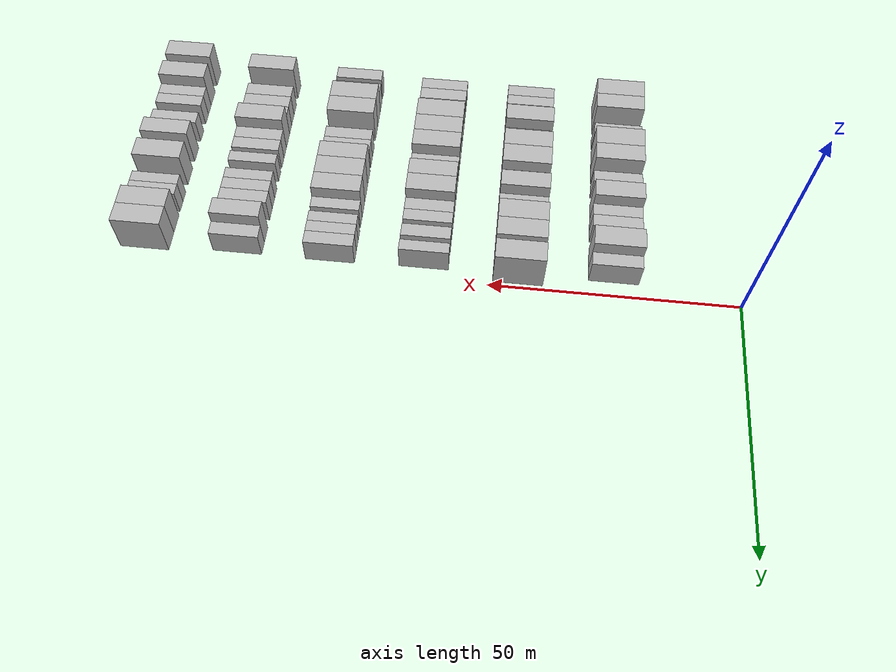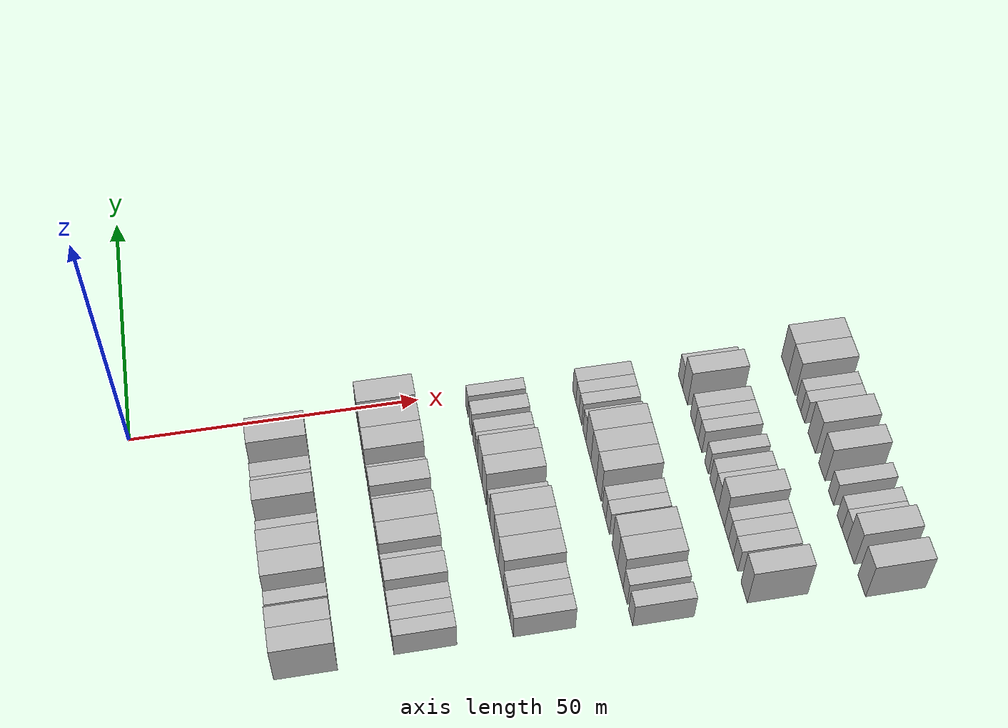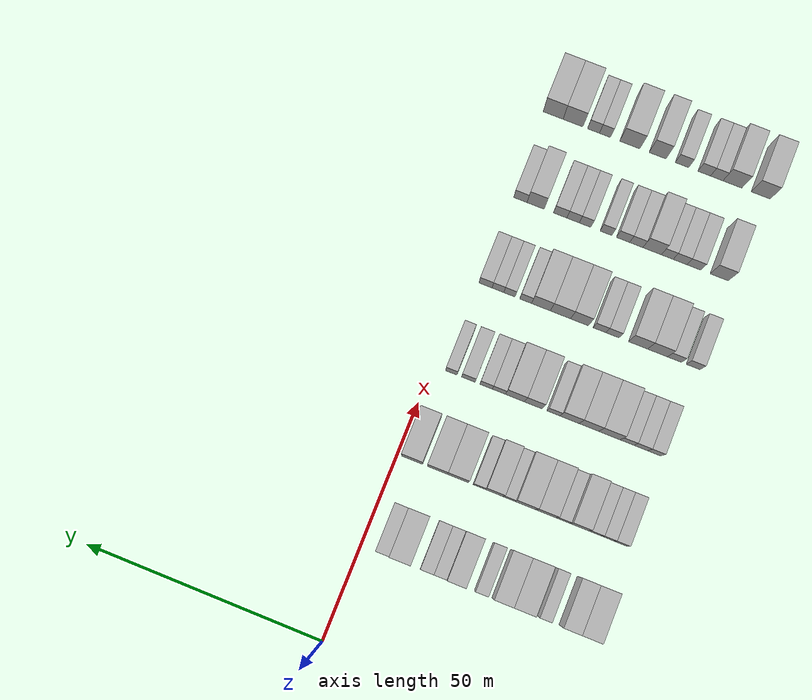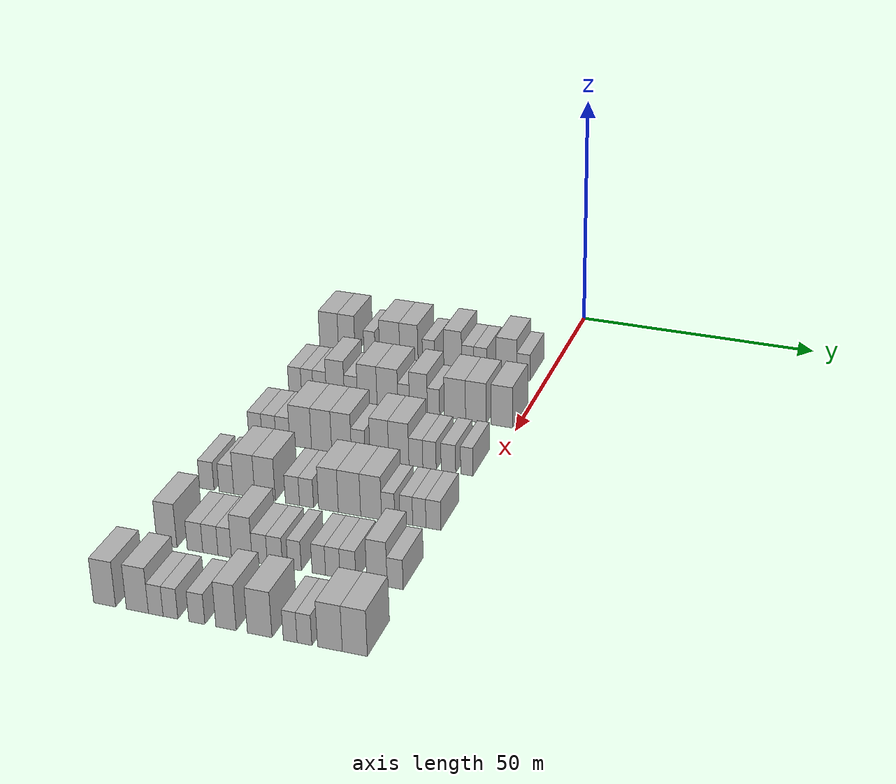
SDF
<sdf version="1.6">
 <world name="default">
  <model name="building_81">
   <static>1</static>
   <pose>25.0000 -47.2864 0 0.000000 0.000000 0.000000</pose>
   <link name="link">
    <pose>0 0 4.50 0 0 0</pose>
    <collision name="collision"><geometry><box><size>10.0000 4.2338 9.0000</size></box></geometry></collision>
    <visual name="visual">
     <cast_shadows>0</cast_shadows>
     <geometry><box><size>10.0000 4.2338 9.0000</size></box></geometry>
     <material>
      <script>
       <uri>model://HANNAS_wall/materials/scripts</uri>
       <uri>model://HANNAS_wall/materials/textures</uri>
       <name>vrc/HANNAS_wall</name>
      </script>
     </material>
    </visual>
   </link>
  </model>
  <model name="building_82">
   <static>1</static>
   <pose>25.0000 -43.3080 0 0.000000 0.000000 0.000000</pose>
   <link name="link">
    <pose>0 0 4.50 0 0 0</pose>
    <collision name="collision"><geometry><box><size>10.0000 3.7230 9.0000</size></box></geometry></collision>
    <visual name="visual">
     <cast_shadows>0</cast_shadows>
     <geometry><box><size>10.0000 3.7230 9.0000</size></box></geometry>
     <material>
      <script>
       <uri>model://HANNAS_wall/materials/scripts</uri>
       <uri>model://HANNAS_wall/materials/textures</uri>
       <name>vrc/HANNAS_wall</name>
      </script>
     </material>
    </visual>
   </link>
  </model>
  <model name="building_83">
   <static>1</static>
   <pose>25.0000 -38.1948 0 0.000000 0.000000 0.000000</pose>
   <link name="link">
    <pose>0 0 3.00 0 0 0</pose>
    <collision name="collision"><geometry><box><size>10.0000 2.5033 6.0000</size></box></geometry></collision>
    <visual name="visual">
     <cast_shadows>0</cast_shadows>
     <geometry><box><size>10.0000 2.5033 6.0000</size></box></geometry>
     <material>
      <script>
       <uri>model://HANNAS_wall/materials/scripts</uri>
       <uri>model://HANNAS_wall/materials/textures</uri>
       <name>vrc/HANNAS_wall</name>
      </script>
     </material>
    </visual>
   </link>
  </model>
  <model name="building_84">
   <static>1</static>
   <pose>25.0000 -33.7009 0 0.000000 0.000000 0.000000</pose>
   <link name="link">
    <pose>0 0 4.50 0 0 0</pose>
    <collision name="collision"><geometry><box><size>10.0000 4.4846 9.0000</size></box></geometry></collision>
    <visual name="visual">
     <cast_shadows>0</cast_shadows>
     <geometry><box><size>10.0000 4.4846 9.0000</size></box></geometry>
     <material>
      <script>
       <uri>model://HANNAS_wall/materials/scripts</uri>
       <uri>model://HANNAS_wall/materials/textures</uri>
       <name>vrc/HANNAS_wall</name>
      </script>
     </material>
    </visual>
   </link>
  </model>
  <model name="building_85">
   <static>1</static>
   <pose>25.0000 -29.4518 0 0.000000 0.000000 0.000000</pose>
   <link name="link">
    <pose>0 0 4.50 0 0 0</pose>
    <collision name="collision"><geometry><box><size>10.0000 4.0135 9.0000</size></box></geometry></collision>
    <visual name="visual">
     <cast_shadows>0</cast_shadows>
     <geometry><box><size>10.0000 4.0135 9.0000</size></box></geometry>
     <material>
      <script>
       <uri>model://HANNAS_wall/materials/scripts</uri>
       <uri>model://HANNAS_wall/materials/textures</uri>
       <name>vrc/HANNAS_wall</name>
      </script>
     </material>
    </visual>
   </link>
  </model>
  <model name="building_86">
   <static>1</static>
   <pose>25.0000 -25.1107 0 0.000000 0.000000 0.000000</pose>
   <link name="link">
    <pose>0 0 3.00 0 0 0</pose>
    <collision name="collision"><geometry><box><size>10.0000 2.6688 6.0000</size></box></geometry></collision>
    <visual name="visual">
     <cast_shadows>0</cast_shadows>
     <geometry><box><size>10.0000 2.6688 6.0000</size></box></geometry>
     <material>
      <script>
       <uri>model://HANNAS_wall/materials/scripts</uri>
       <uri>model://HANNAS_wall/materials/textures</uri>
       <name>vrc/HANNAS_wall</name>
      </script>
     </material>
    </visual>
   </link>
  </model>
  <model name="building_87">
   <static>1</static>
   <pose>25.0000 -19.8352 0 0.000000 0.000000 0.000000</pose>
   <link name="link">
    <pose>0 0 4.50 0 0 0</pose>
    <collision name="collision"><geometry><box><size>10.0000 3.8820 9.0000</size></box></geometry></collision>
    <visual name="visual">
     <cast_shadows>0</cast_shadows>
     <geometry><box><size>10.0000 3.8820 9.0000</size></box></geometry>
     <material>
      <script>
       <uri>model://HANNAS_wall/materials/scripts</uri>
       <uri>model://HANNAS_wall/materials/textures</uri>
       <name>vrc/HANNAS_wall</name>
      </script>
     </material>
    </visual>
   </link>
  </model>
  <model name="building_88">
   <static>1</static>
   <pose>25.0000 -16.5623 0 0.000000 0.000000 0.000000</pose>
   <link name="link">
    <pose>0 0 3.00 0 0 0</pose>
    <collision name="collision"><geometry><box><size>10.0000 2.6638 6.0000</size></box></geometry></collision>
    <visual name="visual">
     <cast_shadows>0</cast_shadows>
     <geometry><box><size>10.0000 2.6638 6.0000</size></box></geometry>
     <material>
      <script>
       <uri>model://HANNAS_wall/materials/scripts</uri>
       <uri>model://HANNAS_wall/materials/textures</uri>
       <name>vrc/HANNAS_wall</name>
      </script>
     </material>
    </visual>
   </link>
  </model>
  <model name="building_89">
   <static>1</static>
   <pose>25.0000 -13.8330 0 0.000000 0.000000 0.000000</pose>
   <link name="link">
    <pose>0 0 3.00 0 0 0</pose>
    <collision name="collision"><geometry><box><size>10.0000 2.7950 6.0000</size></box></geometry></collision>
    <visual name="visual">
     <cast_shadows>0</cast_shadows>
     <geometry><box><size>10.0000 2.7950 6.0000</size></box></geometry>
     <material>
      <script>
       <uri>model://HANNAS_wall/materials/scripts</uri>
       <uri>model://HANNAS_wall/materials/textures</uri>
       <name>vrc/HANNAS_wall</name>
      </script>
     </material>
    </visual>
   </link>
  </model>
  <model name="building_90">
   <static>1</static>
   <pose>25.0000 -8.2355 0 0.000000 0.000000 0.000000</pose>
   <link name="link">
    <pose>0 0 4.50 0 0 0</pose>
    <collision name="collision"><geometry><box><size>10.0000 4.3999 9.0000</size></box></geometry></collision>
    <visual name="visual">
     <cast_shadows>0</cast_shadows>
     <geometry><box><size>10.0000 4.3999 9.0000</size></box></geometry>
     <material>
      <script>
       <uri>model://HANNAS_wall/materials/scripts</uri>
       <uri>model://HANNAS_wall/materials/textures</uri>
       <name>vrc/HANNAS_wall</name>
      </script>
     </material>
    </visual>
   </link>
  </model>
  <model name="building_91">
   <static>1</static>
   <pose>25.0000 -4.6048 0 0.000000 0.000000 0.000000</pose>
   <link name="link">
    <pose>0 0 3.00 0 0 0</pose>
    <collision name="collision"><geometry><box><size>10.0000 2.8616 6.0000</size></box></geometry></collision>
    <visual name="visual">
     <cast_shadows>0</cast_shadows>
     <geometry><box><size>10.0000 2.8616 6.0000</size></box></geometry>
     <material>
      <script>
       <uri>model://HANNAS_wall/materials/scripts</uri>
       <uri>model://HANNAS_wall/materials/textures</uri>
       <name>vrc/HANNAS_wall</name>
      </script>
     </material>
    </visual>
   </link>
  </model>
  <model name="building_254">
   <static>1</static>
   <pose>44.0000 -46.8607 0 0.000000 0.000000 0.000000</pose>
   <link name="link">
    <pose>0 0 3.00 0 0 0</pose>
    <collision name="collision"><geometry><box><size>10.0000 2.7689 6.0000</size></box></geometry></collision>
    <visual name="visual">
     <cast_shadows>0</cast_shadows>
     <geometry><box><size>10.0000 2.7689 6.0000</size></box></geometry>
     <material>
      <script>
       <uri>model://HANNAS_wall/materials/scripts</uri>
       <uri>model://HANNAS_wall/materials/textures</uri>
       <name>vrc/HANNAS_wall</name>
      </script>
     </material>
    </visual>
   </link>
  </model>
  <model name="building_255">
   <static>1</static>
   <pose>44.0000 -44.2031 0 0.000000 0.000000 0.000000</pose>
   <link name="link">
    <pose>0 0 3.00 0 0 0</pose>
    <collision name="collision"><geometry><box><size>10.0000 2.5463 6.0000</size></box></geometry></collision>
    <visual name="visual">
     <cast_shadows>0</cast_shadows>
     <geometry><box><size>10.0000 2.5463 6.0000</size></box></geometry>
     <material>
      <script>
       <uri>model://HANNAS_wall/materials/scripts</uri>
       <uri>model://HANNAS_wall/materials/textures</uri>
       <name>vrc/HANNAS_wall</name>
      </script>
     </material>
    </visual>
   </link>
  </model>
  <model name="building_256">
   <static>1</static>
   <pose>44.0000 -41.4978 0 0.000000 0.000000 0.000000</pose>
   <link name="link">
    <pose>0 0 3.00 0 0 0</pose>
    <collision name="collision"><geometry><box><size>10.0000 2.8644 6.0000</size></box></geometry></collision>
    <visual name="visual">
     <cast_shadows>0</cast_shadows>
     <geometry><box><size>10.0000 2.8644 6.0000</size></box></geometry>
     <material>
      <script>
       <uri>model://HANNAS_wall/materials/scripts</uri>
       <uri>model://HANNAS_wall/materials/textures</uri>
       <name>vrc/HANNAS_wall</name>
      </script>
     </material>
    </visual>
   </link>
  </model>
  <model name="building_257">
   <static>1</static>
   <pose>44.0000 -38.1155 0 0.000000 0.000000 0.000000</pose>
   <link name="link">
    <pose>0 0 4.50 0 0 0</pose>
    <collision name="collision"><geometry><box><size>10.0000 3.9001 9.0000</size></box></geometry></collision>
    <visual name="visual">
     <cast_shadows>0</cast_shadows>
     <geometry><box><size>10.0000 3.9001 9.0000</size></box></geometry>
     <material>
      <script>
       <uri>model://HANNAS_wall/materials/scripts</uri>
       <uri>model://HANNAS_wall/materials/textures</uri>
       <name>vrc/HANNAS_wall</name>
      </script>
     </material>
    </visual>
   </link>
  </model>
  <model name="building_258">
   <static>1</static>
   <pose>44.0000 -34.7606 0 0.000000 0.000000 0.000000</pose>
   <link name="link">
    <pose>0 0 3.00 0 0 0</pose>
    <collision name="collision"><geometry><box><size>10.0000 2.8097 6.0000</size></box></geometry></collision>
    <visual name="visual">
     <cast_shadows>0</cast_shadows>
     <geometry><box><size>10.0000 2.8097 6.0000</size></box></geometry>
     <material>
      <script>
       <uri>model://HANNAS_wall/materials/scripts</uri>
       <uri>model://HANNAS_wall/materials/textures</uri>
       <name>vrc/HANNAS_wall</name>
      </script>
     </material>
    </visual>
   </link>
  </model>
  <model name="building_259">
   <static>1</static>
   <pose>44.0000 -31.2723 0 0.000000 0.000000 0.000000</pose>
   <link name="link">
    <pose>0 0 4.50 0 0 0</pose>
    <collision name="collision"><geometry><box><size>10.0000 4.1668 9.0000</size></box></geometry></collision>
    <visual name="visual">
     <cast_shadows>0</cast_shadows>
     <geometry><box><size>10.0000 4.1668 9.0000</size></box></geometry>
     <material>
      <script>
       <uri>model://HANNAS_wall/materials/scripts</uri>
       <uri>model://HANNAS_wall/materials/textures</uri>
       <name>vrc/HANNAS_wall</name>
      </script>
     </material>
    </visual>
   </link>
  </model>
  <model name="building_260">
   <static>1</static>
   <pose>44.0000 -26.9657 0 0.000000 0.000000 0.000000</pose>
   <link name="link">
    <pose>0 0 4.50 0 0 0</pose>
    <collision name="collision"><geometry><box><size>10.0000 4.4465 9.0000</size></box></geometry></collision>
    <visual name="visual">
     <cast_shadows>0</cast_shadows>
     <geometry><box><size>10.0000 4.4465 9.0000</size></box></geometry>
     <material>
      <script>
       <uri>model://HANNAS_wall/materials/scripts</uri>
       <uri>model://HANNAS_wall/materials/textures</uri>
       <name>vrc/HANNAS_wall</name>
      </script>
     </material>
    </visual>
   </link>
  </model>
  <model name="building_261">
   <static>1</static>
   <pose>44.0000 -23.5285 0 0.000000 0.000000 0.000000</pose>
   <link name="link">
    <pose>0 0 3.00 0 0 0</pose>
    <collision name="collision"><geometry><box><size>10.0000 2.4279 6.0000</size></box></geometry></collision>
    <visual name="visual">
     <cast_shadows>0</cast_shadows>
     <geometry><box><size>10.0000 2.4279 6.0000</size></box></geometry>
     <material>
      <script>
       <uri>model://HANNAS_wall/materials/scripts</uri>
       <uri>model://HANNAS_wall/materials/textures</uri>
       <name>vrc/HANNAS_wall</name>
      </script>
     </material>
    </visual>
   </link>
  </model>
  <model name="building_262">
   <static>1</static>
   <pose>44.0000 -20.4294 0 0.000000 0.000000 0.000000</pose>
   <link name="link">
    <pose>0 0 4.50 0 0 0</pose>
    <collision name="collision"><geometry><box><size>10.0000 3.7702 9.0000</size></box></geometry></collision>
    <visual name="visual">
     <cast_shadows>0</cast_shadows>
     <geometry><box><size>10.0000 3.7702 9.0000</size></box></geometry>
     <material>
      <script>
       <uri>model://HANNAS_wall/materials/scripts</uri>
       <uri>model://HANNAS_wall/materials/textures</uri>
       <name>vrc/HANNAS_wall</name>
      </script>
     </material>
    </visual>
   </link>
  </model>
  <model name="building_263">
   <static>1</static>
   <pose>44.0000 -17.2738 0 0.000000 0.000000 0.000000</pose>
   <link name="link">
    <pose>0 0 3.00 0 0 0</pose>
    <collision name="collision"><geometry><box><size>10.0000 2.5410 6.0000</size></box></geometry></collision>
    <visual name="visual">
     <cast_shadows>0</cast_shadows>
     <geometry><box><size>10.0000 2.5410 6.0000</size></box></geometry>
     <material>
      <script>
       <uri>model://HANNAS_wall/materials/scripts</uri>
       <uri>model://HANNAS_wall/materials/textures</uri>
       <name>vrc/HANNAS_wall</name>
      </script>
     </material>
    </visual>
   </link>
  </model>
  <model name="building_264">
   <static>1</static>
   <pose>44.0000 -12.8009 0 0.000000 0.000000 0.000000</pose>
   <link name="link">
    <pose>0 0 4.50 0 0 0</pose>
    <collision name="collision"><geometry><box><size>10.0000 4.4047 9.0000</size></box></geometry></collision>
    <visual name="visual">
     <cast_shadows>0</cast_shadows>
     <geometry><box><size>10.0000 4.4047 9.0000</size></box></geometry>
     <material>
      <script>
       <uri>model://HANNAS_wall/materials/scripts</uri>
       <uri>model://HANNAS_wall/materials/textures</uri>
       <name>vrc/HANNAS_wall</name>
      </script>
     </material>
    </visual>
   </link>
  </model>
  <model name="building_265">
   <static>1</static>
   <pose>44.0000 -8.4700 0 0.000000 0.000000 0.000000</pose>
   <link name="link">
    <pose>0 0 4.50 0 0 0</pose>
    <collision name="collision"><geometry><box><size>10.0000 4.2570 9.0000</size></box></geometry></collision>
    <visual name="visual">
     <cast_shadows>0</cast_shadows>
     <geometry><box><size>10.0000 4.2570 9.0000</size></box></geometry>
     <material>
      <script>
       <uri>model://HANNAS_wall/materials/scripts</uri>
       <uri>model://HANNAS_wall/materials/textures</uri>
       <name>vrc/HANNAS_wall</name>
      </script>
     </material>
    </visual>
   </link>
  </model>
  <model name="building_266">
   <static>1</static>
   <pose>44.0000 -3.1269 0 0.000000 0.000000 0.000000</pose>
   <link name="link">
    <pose>0 0 4.50 0 0 0</pose>
    <collision name="collision"><geometry><box><size>10.0000 4.4292 9.0000</size></box></geometry></collision>
    <visual name="visual">
     <cast_shadows>0</cast_shadows>
     <geometry><box><size>10.0000 4.4292 9.0000</size></box></geometry>
     <material>
      <script>
       <uri>model://HANNAS_wall/materials/scripts</uri>
       <uri>model://HANNAS_wall/materials/textures</uri>
       <name>vrc/HANNAS_wall</name>
      </script>
     </material>
    </visual>
   </link>
  </model>
  <model name="building_426">
   <static>1</static>
   <pose>63.0000 -46.9938 0 0.000000 0.000000 0.000000</pose>
   <link name="link">
    <pose>0 0 3.00 0 0 0</pose>
    <collision name="collision"><geometry><box><size>10.0000 2.7776 6.0000</size></box></geometry></collision>
    <visual name="visual">
     <cast_shadows>0</cast_shadows>
     <geometry><box><size>10.0000 2.7776 6.0000</size></box></geometry>
     <material>
      <script>
       <uri>model://HANNAS_wall/materials/scripts</uri>
       <uri>model://HANNAS_wall/materials/textures</uri>
       <name>vrc/HANNAS_wall</name>
      </script>
     </material>
    </visual>
   </link>
  </model>
  <model name="building_427">
   <static>1</static>
   <pose>63.0000 -44.1446 0 0.000000 0.000000 0.000000</pose>
   <link name="link">
    <pose>0 0 3.00 0 0 0</pose>
    <collision name="collision"><geometry><box><size>10.0000 2.9208 6.0000</size></box></geometry></collision>
    <visual name="visual">
     <cast_shadows>0</cast_shadows>
     <geometry><box><size>10.0000 2.9208 6.0000</size></box></geometry>
     <material>
      <script>
       <uri>model://HANNAS_wall/materials/scripts</uri>
       <uri>model://HANNAS_wall/materials/textures</uri>
       <name>vrc/HANNAS_wall</name>
      </script>
     </material>
    </visual>
   </link>
  </model>
  <model name="building_428">
   <static>1</static>
   <pose>63.0000 -41.2315 0 0.000000 0.000000 0.000000</pose>
   <link name="link">
    <pose>0 0 3.00 0 0 0</pose>
    <collision name="collision"><geometry><box><size>10.0000 2.9053 6.0000</size></box></geometry></collision>
    <visual name="visual">
     <cast_shadows>0</cast_shadows>
     <geometry><box><size>10.0000 2.9053 6.0000</size></box></geometry>
     <material>
      <script>
       <uri>model://HANNAS_wall/materials/scripts</uri>
       <uri>model://HANNAS_wall/materials/textures</uri>
       <name>vrc/HANNAS_wall</name>
      </script>
     </material>
    </visual>
   </link>
  </model>
  <model name="building_429">
   <static>1</static>
   <pose>63.0000 -37.5346 0 0.000000 0.000000 0.000000</pose>
   <link name="link">
    <pose>0 0 4.50 0 0 0</pose>
    <collision name="collision"><geometry><box><size>10.0000 4.4887 9.0000</size></box></geometry></collision>
    <visual name="visual">
     <cast_shadows>0</cast_shadows>
     <geometry><box><size>10.0000 4.4887 9.0000</size></box></geometry>
     <material>
      <script>
       <uri>model://HANNAS_wall/materials/scripts</uri>
       <uri>model://HANNAS_wall/materials/textures</uri>
       <name>vrc/HANNAS_wall</name>
      </script>
     </material>
    </visual>
   </link>
  </model>
  <model name="building_430">
   <static>1</static>
   <pose>63.0000 -33.2075 0 0.000000 0.000000 0.000000</pose>
   <link name="link">
    <pose>0 0 4.50 0 0 0</pose>
    <collision name="collision"><geometry><box><size>10.0000 4.1654 9.0000</size></box></geometry></collision>
    <visual name="visual">
     <cast_shadows>0</cast_shadows>
     <geometry><box><size>10.0000 4.1654 9.0000</size></box></geometry>
     <material>
      <script>
       <uri>model://HANNAS_wall/materials/scripts</uri>
       <uri>model://HANNAS_wall/materials/textures</uri>
       <name>vrc/HANNAS_wall</name>
      </script>
     </material>
    </visual>
   </link>
  </model>
  <model name="building_431">
   <static>1</static>
   <pose>63.0000 -29.1012 0 0.000000 0.000000 0.000000</pose>
   <link name="link">
    <pose>0 0 4.50 0 0 0</pose>
    <collision name="collision"><geometry><box><size>10.0000 4.0471 9.0000</size></box></geometry></collision>
    <visual name="visual">
     <cast_shadows>0</cast_shadows>
     <geometry><box><size>10.0000 4.0471 9.0000</size></box></geometry>
     <material>
      <script>
       <uri>model://HANNAS_wall/materials/scripts</uri>
       <uri>model://HANNAS_wall/materials/textures</uri>
       <name>vrc/HANNAS_wall</name>
      </script>
     </material>
    </visual>
   </link>
  </model>
  <model name="building_432">
   <static>1</static>
   <pose>63.0000 -25.6711 0 0.000000 0.000000 0.000000</pose>
   <link name="link">
    <pose>0 0 3.00 0 0 0</pose>
    <collision name="collision"><geometry><box><size>10.0000 2.8132 6.0000</size></box></geometry></collision>
    <visual name="visual">
     <cast_shadows>0</cast_shadows>
     <geometry><box><size>10.0000 2.8132 6.0000</size></box></geometry>
     <material>
      <script>
       <uri>model://HANNAS_wall/materials/scripts</uri>
       <uri>model://HANNAS_wall/materials/textures</uri>
       <name>vrc/HANNAS_wall</name>
      </script>
     </material>
    </visual>
   </link>
  </model>
  <model name="building_433">
   <static>1</static>
   <pose>63.0000 -21.3791 0 0.000000 0.000000 0.000000</pose>
   <link name="link">
    <pose>0 0 4.50 0 0 0</pose>
    <collision name="collision"><geometry><box><size>10.0000 3.7708 9.0000</size></box></geometry></collision>
    <visual name="visual">
     <cast_shadows>0</cast_shadows>
     <geometry><box><size>10.0000 3.7708 9.0000</size></box></geometry>
     <material>
      <script>
       <uri>model://HANNAS_wall/materials/scripts</uri>
       <uri>model://HANNAS_wall/materials/textures</uri>
       <name>vrc/HANNAS_wall</name>
      </script>
     </material>
    </visual>
   </link>
  </model>
  <model name="building_434">
   <static>1</static>
   <pose>63.0000 -17.4665 0 0.000000 0.000000 0.000000</pose>
   <link name="link">
    <pose>0 0 4.50 0 0 0</pose>
    <collision name="collision"><geometry><box><size>10.0000 4.0543 9.0000</size></box></geometry></collision>
    <visual name="visual">
     <cast_shadows>0</cast_shadows>
     <geometry><box><size>10.0000 4.0543 9.0000</size></box></geometry>
     <material>
      <script>
       <uri>model://HANNAS_wall/materials/scripts</uri>
       <uri>model://HANNAS_wall/materials/textures</uri>
       <name>vrc/HANNAS_wall</name>
      </script>
     </material>
    </visual>
   </link>
  </model>
  <model name="building_435">
   <static>1</static>
   <pose>63.0000 -14.0441 0 0.000000 0.000000 0.000000</pose>
   <link name="link">
    <pose>0 0 3.00 0 0 0</pose>
    <collision name="collision"><geometry><box><size>10.0000 2.7904 6.0000</size></box></geometry></collision>
    <visual name="visual">
     <cast_shadows>0</cast_shadows>
     <geometry><box><size>10.0000 2.7904 6.0000</size></box></geometry>
     <material>
      <script>
       <uri>model://HANNAS_wall/materials/scripts</uri>
       <uri>model://HANNAS_wall/materials/textures</uri>
       <name>vrc/HANNAS_wall</name>
      </script>
     </material>
    </visual>
   </link>
  </model>
  <model name="building_436">
   <static>1</static>
   <pose>63.0000 -11.3173 0 0.000000 0.000000 0.000000</pose>
   <link name="link">
    <pose>0 0 3.00 0 0 0</pose>
    <collision name="collision"><geometry><box><size>10.0000 2.6633 6.0000</size></box></geometry></collision>
    <visual name="visual">
     <cast_shadows>0</cast_shadows>
     <geometry><box><size>10.0000 2.6633 6.0000</size></box></geometry>
     <material>
      <script>
       <uri>model://HANNAS_wall/materials/scripts</uri>
       <uri>model://HANNAS_wall/materials/textures</uri>
       <name>vrc/HANNAS_wall</name>
      </script>
     </material>
    </visual>
   </link>
  </model>
  <model name="building_437">
   <static>1</static>
   <pose>63.0000 -7.5470 0 0.000000 0.000000 0.000000</pose>
   <link name="link">
    <pose>0 0 3.00 0 0 0</pose>
    <collision name="collision"><geometry><box><size>10.0000 2.8773 6.0000</size></box></geometry></collision>
    <visual name="visual">
     <cast_shadows>0</cast_shadows>
     <geometry><box><size>10.0000 2.8773 6.0000</size></box></geometry>
     <material>
      <script>
       <uri>model://HANNAS_wall/materials/scripts</uri>
       <uri>model://HANNAS_wall/materials/textures</uri>
       <name>vrc/HANNAS_wall</name>
      </script>
     </material>
    </visual>
   </link>
  </model>
  <model name="building_438">
   <static>1</static>
   <pose>63.0000 -3.9003 0 0.000000 0.000000 0.000000</pose>
   <link name="link">
    <pose>0 0 3.00 0 0 0</pose>
    <collision name="collision"><geometry><box><size>10.0000 2.4160 6.0000</size></box></geometry></collision>
    <visual name="visual">
     <cast_shadows>0</cast_shadows>
     <geometry><box><size>10.0000 2.4160 6.0000</size></box></geometry>
     <material>
      <script>
       <uri>model://HANNAS_wall/materials/scripts</uri>
       <uri>model://HANNAS_wall/materials/textures</uri>
       <name>vrc/HANNAS_wall</name>
      </script>
     </material>
    </visual>
   </link>
  </model>
  <model name="building_583">
   <static>1</static>
   <pose>82.0000 -48.2015 0 0.000000 0.000000 0.000000</pose>
   <link name="link">
    <pose>0 0 3.00 0 0 0</pose>
    <collision name="collision"><geometry><box><size>10.0000 2.9221 6.0000</size></box></geometry></collision>
    <visual name="visual">
     <cast_shadows>0</cast_shadows>
     <geometry><box><size>10.0000 2.9221 6.0000</size></box></geometry>
     <material>
      <script>
       <uri>model://HANNAS_wall/materials/scripts</uri>
       <uri>model://HANNAS_wall/materials/textures</uri>
       <name>vrc/HANNAS_wall</name>
      </script>
     </material>
    </visual>
   </link>
  </model>
  <model name="building_584">
   <static>1</static>
   <pose>82.0000 -44.2499 0 0.000000 0.000000 0.000000</pose>
   <link name="link">
    <pose>0 0 3.00 0 0 0</pose>
    <collision name="collision"><geometry><box><size>10.0000 2.9812 6.0000</size></box></geometry></collision>
    <visual name="visual">
     <cast_shadows>0</cast_shadows>
     <geometry><box><size>10.0000 2.9812 6.0000</size></box></geometry>
     <material>
      <script>
       <uri>model://HANNAS_wall/materials/scripts</uri>
       <uri>model://HANNAS_wall/materials/textures</uri>
       <name>vrc/HANNAS_wall</name>
      </script>
     </material>
    </visual>
   </link>
  </model>
  <model name="building_585">
   <static>1</static>
   <pose>82.0000 -40.6408 0 0.000000 0.000000 0.000000</pose>
   <link name="link">
    <pose>0 0 4.50 0 0 0</pose>
    <collision name="collision"><geometry><box><size>10.0000 4.2370 9.0000</size></box></geometry></collision>
    <visual name="visual">
     <cast_shadows>0</cast_shadows>
     <geometry><box><size>10.0000 4.2370 9.0000</size></box></geometry>
     <material>
      <script>
       <uri>model://HANNAS_wall/materials/scripts</uri>
       <uri>model://HANNAS_wall/materials/textures</uri>
       <name>vrc/HANNAS_wall</name>
      </script>
     </material>
    </visual>
   </link>
  </model>
  <model name="building_586">
   <static>1</static>
   <pose>82.0000 -36.4819 0 0.000000 0.000000 0.000000</pose>
   <link name="link">
    <pose>0 0 4.50 0 0 0</pose>
    <collision name="collision"><geometry><box><size>10.0000 4.0807 9.0000</size></box></geometry></collision>
    <visual name="visual">
     <cast_shadows>0</cast_shadows>
     <geometry><box><size>10.0000 4.0807 9.0000</size></box></geometry>
     <material>
      <script>
       <uri>model://HANNAS_wall/materials/scripts</uri>
       <uri>model://HANNAS_wall/materials/textures</uri>
       <name>vrc/HANNAS_wall</name>
      </script>
     </material>
    </visual>
   </link>
  </model>
  <model name="building_587">
   <static>1</static>
   <pose>82.0000 -31.0447 0 0.000000 0.000000 0.000000</pose>
   <link name="link">
    <pose>0 0 3.00 0 0 0</pose>
    <collision name="collision"><geometry><box><size>10.0000 2.7938 6.0000</size></box></geometry></collision>
    <visual name="visual">
     <cast_shadows>0</cast_shadows>
     <geometry><box><size>10.0000 2.7938 6.0000</size></box></geometry>
     <material>
      <script>
       <uri>model://HANNAS_wall/materials/scripts</uri>
       <uri>model://HANNAS_wall/materials/textures</uri>
       <name>vrc/HANNAS_wall</name>
      </script>
     </material>
    </visual>
   </link>
  </model>
  <model name="building_588">
   <static>1</static>
   <pose>82.0000 -28.2639 0 0.000000 0.000000 0.000000</pose>
   <link name="link">
    <pose>0 0 3.00 0 0 0</pose>
    <collision name="collision"><geometry><box><size>10.0000 2.7677 6.0000</size></box></geometry></collision>
    <visual name="visual">
     <cast_shadows>0</cast_shadows>
     <geometry><box><size>10.0000 2.7677 6.0000</size></box></geometry>
     <material>
      <script>
       <uri>model://HANNAS_wall/materials/scripts</uri>
       <uri>model://HANNAS_wall/materials/textures</uri>
       <name>vrc/HANNAS_wall</name>
      </script>
     </material>
    </visual>
   </link>
  </model>
  <model name="building_589">
   <static>1</static>
   <pose>82.0000 -23.9588 0 0.000000 0.000000 0.000000</pose>
   <link name="link">
    <pose>0 0 4.50 0 0 0</pose>
    <collision name="collision"><geometry><box><size>10.0000 3.8426 9.0000</size></box></geometry></collision>
    <visual name="visual">
     <cast_shadows>0</cast_shadows>
     <geometry><box><size>10.0000 3.8426 9.0000</size></box></geometry>
     <material>
      <script>
       <uri>model://HANNAS_wall/materials/scripts</uri>
       <uri>model://HANNAS_wall/materials/textures</uri>
       <name>vrc/HANNAS_wall</name>
      </script>
     </material>
    </visual>
   </link>
  </model>
  <model name="building_590">
   <static>1</static>
   <pose>82.0000 -19.8634 0 0.000000 0.000000 0.000000</pose>
   <link name="link">
    <pose>0 0 4.50 0 0 0</pose>
    <collision name="collision"><geometry><box><size>10.0000 4.3482 9.0000</size></box></geometry></collision>
    <visual name="visual">
     <cast_shadows>0</cast_shadows>
     <geometry><box><size>10.0000 4.3482 9.0000</size></box></geometry>
     <material>
      <script>
       <uri>model://HANNAS_wall/materials/scripts</uri>
       <uri>model://HANNAS_wall/materials/textures</uri>
       <name>vrc/HANNAS_wall</name>
      </script>
     </material>
    </visual>
   </link>
  </model>
  <model name="building_591">
   <static>1</static>
   <pose>82.0000 -15.6730 0 0.000000 0.000000 0.000000</pose>
   <link name="link">
    <pose>0 0 4.50 0 0 0</pose>
    <collision name="collision"><geometry><box><size>10.0000 4.0325 9.0000</size></box></geometry></collision>
    <visual name="visual">
     <cast_shadows>0</cast_shadows>
     <geometry><box><size>10.0000 4.0325 9.0000</size></box></geometry>
     <material>
      <script>
       <uri>model://HANNAS_wall/materials/scripts</uri>
       <uri>model://HANNAS_wall/materials/textures</uri>
       <name>vrc/HANNAS_wall</name>
      </script>
     </material>
    </visual>
   </link>
  </model>
  <model name="building_592">
   <static>1</static>
   <pose>82.0000 -12.3840 0 0.000000 0.000000 0.000000</pose>
   <link name="link">
    <pose>0 0 3.00 0 0 0</pose>
    <collision name="collision"><geometry><box><size>10.0000 2.5453 6.0000</size></box></geometry></collision>
    <visual name="visual">
     <cast_shadows>0</cast_shadows>
     <geometry><box><size>10.0000 2.5453 6.0000</size></box></geometry>
     <material>
      <script>
       <uri>model://HANNAS_wall/materials/scripts</uri>
       <uri>model://HANNAS_wall/materials/textures</uri>
       <name>vrc/HANNAS_wall</name>
      </script>
     </material>
    </visual>
   </link>
  </model>
  <model name="building_593">
   <static>1</static>
   <pose>82.0000 -8.9057 0 0.000000 0.000000 0.000000</pose>
   <link name="link">
    <pose>0 0 3.00 0 0 0</pose>
    <collision name="collision"><geometry><box><size>10.0000 2.4113 6.0000</size></box></geometry></collision>
    <visual name="visual">
     <cast_shadows>0</cast_shadows>
     <geometry><box><size>10.0000 2.4113 6.0000</size></box></geometry>
     <material>
      <script>
       <uri>model://HANNAS_wall/materials/scripts</uri>
       <uri>model://HANNAS_wall/materials/textures</uri>
       <name>vrc/HANNAS_wall</name>
      </script>
     </material>
    </visual>
   </link>
  </model>
  <model name="building_594">
   <static>1</static>
   <pose>82.0000 -6.4374 0 0.000000 0.000000 0.000000</pose>
   <link name="link">
    <pose>0 0 3.00 0 0 0</pose>
    <collision name="collision"><geometry><box><size>10.0000 2.5253 6.0000</size></box></geometry></collision>
    <visual name="visual">
     <cast_shadows>0</cast_shadows>
     <geometry><box><size>10.0000 2.5253 6.0000</size></box></geometry>
     <material>
      <script>
       <uri>model://HANNAS_wall/materials/scripts</uri>
       <uri>model://HANNAS_wall/materials/textures</uri>
       <name>vrc/HANNAS_wall</name>
      </script>
     </material>
    </visual>
   </link>
  </model>
  <model name="building_595">
   <static>1</static>
   <pose>82.0000 -3.7642 0 0.000000 0.000000 0.000000</pose>
   <link name="link">
    <pose>0 0 3.00 0 0 0</pose>
    <collision name="collision"><geometry><box><size>10.0000 2.8211 6.0000</size></box></geometry></collision>
    <visual name="visual">
     <cast_shadows>0</cast_shadows>
     <geometry><box><size>10.0000 2.8211 6.0000</size></box></geometry>
     <material>
      <script>
       <uri>model://HANNAS_wall/materials/scripts</uri>
       <uri>model://HANNAS_wall/materials/textures</uri>
       <name>vrc/HANNAS_wall</name>
      </script>
     </material>
    </visual>
   </link>
  </model>
  <model name="building_760">
   <static>1</static>
   <pose>101.0000 -46.7989 0 0.000000 0.000000 0.000000</pose>
   <link name="link">
    <pose>0 0 4.50 0 0 0</pose>
    <collision name="collision"><geometry><box><size>10.0000 3.8914 9.0000</size></box></geometry></collision>
    <visual name="visual">
     <cast_shadows>0</cast_shadows>
     <geometry><box><size>10.0000 3.8914 9.0000</size></box></geometry>
     <material>
      <script>
       <uri>model://HANNAS_wall/materials/scripts</uri>
       <uri>model://HANNAS_wall/materials/textures</uri>
       <name>vrc/HANNAS_wall</name>
      </script>
     </material>
    </visual>
   </link>
  </model>
  <model name="building_761">
   <static>1</static>
   <pose>101.0000 -41.3560 0 0.000000 0.000000 0.000000</pose>
   <link name="link">
    <pose>0 0 3.00 0 0 0</pose>
    <collision name="collision"><geometry><box><size>10.0000 2.9944 6.0000</size></box></geometry></collision>
    <visual name="visual">
     <cast_shadows>0</cast_shadows>
     <geometry><box><size>10.0000 2.9944 6.0000</size></box></geometry>
     <material>
      <script>
       <uri>model://HANNAS_wall/materials/scripts</uri>
       <uri>model://HANNAS_wall/materials/textures</uri>
       <name>vrc/HANNAS_wall</name>
      </script>
     </material>
    </visual>
   </link>
  </model>
  <model name="building_762">
   <static>1</static>
   <pose>101.0000 -38.3951 0 0.000000 0.000000 0.000000</pose>
   <link name="link">
    <pose>0 0 3.00 0 0 0</pose>
    <collision name="collision"><geometry><box><size>10.0000 2.9273 6.0000</size></box></geometry></collision>
    <visual name="visual">
     <cast_shadows>0</cast_shadows>
     <geometry><box><size>10.0000 2.9273 6.0000</size></box></geometry>
     <material>
      <script>
       <uri>model://HANNAS_wall/materials/scripts</uri>
       <uri>model://HANNAS_wall/materials/textures</uri>
       <name>vrc/HANNAS_wall</name>
      </script>
     </material>
    </visual>
   </link>
  </model>
  <model name="building_763">
   <static>1</static>
   <pose>101.0000 -35.6508 0 0.000000 0.000000 0.000000</pose>
   <link name="link">
    <pose>0 0 3.00 0 0 0</pose>
    <collision name="collision"><geometry><box><size>10.0000 2.5614 6.0000</size></box></geometry></collision>
    <visual name="visual">
     <cast_shadows>0</cast_shadows>
     <geometry><box><size>10.0000 2.5614 6.0000</size></box></geometry>
     <material>
      <script>
       <uri>model://HANNAS_wall/materials/scripts</uri>
       <uri>model://HANNAS_wall/materials/textures</uri>
       <name>vrc/HANNAS_wall</name>
      </script>
     </material>
    </visual>
   </link>
  </model>
  <model name="building_764">
   <static>1</static>
   <pose>101.0000 -32.3920 0 0.000000 0.000000 0.000000</pose>
   <link name="link">
    <pose>0 0 4.50 0 0 0</pose>
    <collision name="collision"><geometry><box><size>10.0000 3.9561 9.0000</size></box></geometry></collision>
    <visual name="visual">
     <cast_shadows>0</cast_shadows>
     <geometry><box><size>10.0000 3.9561 9.0000</size></box></geometry>
     <material>
      <script>
       <uri>model://HANNAS_wall/materials/scripts</uri>
       <uri>model://HANNAS_wall/materials/textures</uri>
       <name>vrc/HANNAS_wall</name>
      </script>
     </material>
    </visual>
   </link>
  </model>
  <model name="building_765">
   <static>1</static>
   <pose>101.0000 -28.9842 0 0.000000 0.000000 0.000000</pose>
   <link name="link">
    <pose>0 0 3.00 0 0 0</pose>
    <collision name="collision"><geometry><box><size>10.0000 2.8596 6.0000</size></box></geometry></collision>
    <visual name="visual">
     <cast_shadows>0</cast_shadows>
     <geometry><box><size>10.0000 2.8596 6.0000</size></box></geometry>
     <material>
      <script>
       <uri>model://HANNAS_wall/materials/scripts</uri>
       <uri>model://HANNAS_wall/materials/textures</uri>
       <name>vrc/HANNAS_wall</name>
      </script>
     </material>
    </visual>
   </link>
  </model>
  <model name="building_766">
   <static>1</static>
   <pose>101.0000 -26.1246 0 0.000000 0.000000 0.000000</pose>
   <link name="link">
    <pose>0 0 3.00 0 0 0</pose>
    <collision name="collision"><geometry><box><size>10.0000 2.8596 6.0000</size></box></geometry></collision>
    <visual name="visual">
     <cast_shadows>0</cast_shadows>
     <geometry><box><size>10.0000 2.8596 6.0000</size></box></geometry>
     <material>
      <script>
       <uri>model://HANNAS_wall/materials/scripts</uri>
       <uri>model://HANNAS_wall/materials/textures</uri>
       <name>vrc/HANNAS_wall</name>
      </script>
     </material>
    </visual>
   </link>
  </model>
  <model name="building_767">
   <static>1</static>
   <pose>101.0000 -22.4333 0 0.000000 0.000000 0.000000</pose>
   <link name="link">
    <pose>0 0 3.00 0 0 0</pose>
    <collision name="collision"><geometry><box><size>10.0000 2.5228 6.0000</size></box></geometry></collision>
    <visual name="visual">
     <cast_shadows>0</cast_shadows>
     <geometry><box><size>10.0000 2.5228 6.0000</size></box></geometry>
     <material>
      <script>
       <uri>model://HANNAS_wall/materials/scripts</uri>
       <uri>model://HANNAS_wall/materials/textures</uri>
       <name>vrc/HANNAS_wall</name>
      </script>
     </material>
    </visual>
   </link>
  </model>
  <model name="building_768">
   <static>1</static>
   <pose>101.0000 -17.9182 0 0.000000 0.000000 0.000000</pose>
   <link name="link">
    <pose>0 0 3.00 0 0 0</pose>
    <collision name="collision"><geometry><box><size>10.0000 2.5074 6.0000</size></box></geometry></collision>
    <visual name="visual">
     <cast_shadows>0</cast_shadows>
     <geometry><box><size>10.0000 2.5074 6.0000</size></box></geometry>
     <material>
      <script>
       <uri>model://HANNAS_wall/materials/scripts</uri>
       <uri>model://HANNAS_wall/materials/textures</uri>
       <name>vrc/HANNAS_wall</name>
      </script>
     </material>
    </visual>
   </link>
  </model>
  <model name="building_769">
   <static>1</static>
   <pose>101.0000 -15.3217 0 0.000000 0.000000 0.000000</pose>
   <link name="link">
    <pose>0 0 3.00 0 0 0</pose>
    <collision name="collision"><geometry><box><size>10.0000 2.6857 6.0000</size></box></geometry></collision>
    <visual name="visual">
     <cast_shadows>0</cast_shadows>
     <geometry><box><size>10.0000 2.6857 6.0000</size></box></geometry>
     <material>
      <script>
       <uri>model://HANNAS_wall/materials/scripts</uri>
       <uri>model://HANNAS_wall/materials/textures</uri>
       <name>vrc/HANNAS_wall</name>
      </script>
     </material>
    </visual>
   </link>
  </model>
  <model name="building_770">
   <static>1</static>
   <pose>101.0000 -12.5225 0 0.000000 0.000000 0.000000</pose>
   <link name="link">
    <pose>0 0 3.00 0 0 0</pose>
    <collision name="collision"><geometry><box><size>10.0000 2.9128 6.0000</size></box></geometry></collision>
    <visual name="visual">
     <cast_shadows>0</cast_shadows>
     <geometry><box><size>10.0000 2.9128 6.0000</size></box></geometry>
     <material>
      <script>
       <uri>model://HANNAS_wall/materials/scripts</uri>
       <uri>model://HANNAS_wall/materials/textures</uri>
       <name>vrc/HANNAS_wall</name>
      </script>
     </material>
    </visual>
   </link>
  </model>
  <model name="building_771">
   <static>1</static>
   <pose>101.0000 -7.2124 0 0.000000 0.000000 0.000000</pose>
   <link name="link">
    <pose>0 0 4.50 0 0 0</pose>
    <collision name="collision"><geometry><box><size>10.0000 3.7075 9.0000</size></box></geometry></collision>
    <visual name="visual">
     <cast_shadows>0</cast_shadows>
     <geometry><box><size>10.0000 3.7075 9.0000</size></box></geometry>
     <material>
      <script>
       <uri>model://HANNAS_wall/materials/scripts</uri>
       <uri>model://HANNAS_wall/materials/textures</uri>
       <name>vrc/HANNAS_wall</name>
      </script>
     </material>
    </visual>
   </link>
  </model>
  <model name="building_772">
   <static>1</static>
   <pose>101.0000 -3.9030 0 0.000000 0.000000 0.000000</pose>
   <link name="link">
    <pose>0 0 3.00 0 0 0</pose>
    <collision name="collision"><geometry><box><size>10.0000 2.9114 6.0000</size></box></geometry></collision>
    <visual name="visual">
     <cast_shadows>0</cast_shadows>
     <geometry><box><size>10.0000 2.9114 6.0000</size></box></geometry>
     <material>
      <script>
       <uri>model://HANNAS_wall/materials/scripts</uri>
       <uri>model://HANNAS_wall/materials/textures</uri>
       <name>vrc/HANNAS_wall</name>
      </script>
     </material>
    </visual>
   </link>
  </model>
  <model name="building_936">
   <static>1</static>
   <pose>120.0000 -48.8256 0 0.000000 0.000000 0.000000</pose>
   <link name="link">
    <pose>0 0 4.50 0 0 0</pose>
    <collision name="collision"><geometry><box><size>10.0000 4.1071 9.0000</size></box></geometry></collision>
    <visual name="visual">
     <cast_shadows>0</cast_shadows>
     <geometry><box><size>10.0000 4.1071 9.0000</size></box></geometry>
     <material>
      <script>
       <uri>model://HANNAS_wall/materials/scripts</uri>
       <uri>model://HANNAS_wall/materials/textures</uri>
       <name>vrc/HANNAS_wall</name>
      </script>
     </material>
    </visual>
   </link>
  </model>
  <model name="building_937">
   <static>1</static>
   <pose>120.0000 -42.7229 0 0.000000 0.000000 0.000000</pose>
   <link name="link">
    <pose>0 0 4.50 0 0 0</pose>
    <collision name="collision"><geometry><box><size>10.0000 4.0983 9.0000</size></box></geometry></collision>
    <visual name="visual">
     <cast_shadows>0</cast_shadows>
     <geometry><box><size>10.0000 4.0983 9.0000</size></box></geometry>
     <material>
      <script>
       <uri>model://HANNAS_wall/materials/scripts</uri>
       <uri>model://HANNAS_wall/materials/textures</uri>
       <name>vrc/HANNAS_wall</name>
      </script>
     </material>
    </visual>
   </link>
  </model>
  <model name="building_938">
   <static>1</static>
   <pose>120.0000 -39.3234 0 0.000000 0.000000 0.000000</pose>
   <link name="link">
    <pose>0 0 3.00 0 0 0</pose>
    <collision name="collision"><geometry><box><size>10.0000 2.7007 6.0000</size></box></geometry></collision>
    <visual name="visual">
     <cast_shadows>0</cast_shadows>
     <geometry><box><size>10.0000 2.7007 6.0000</size></box></geometry>
     <material>
      <script>
       <uri>model://HANNAS_wall/materials/scripts</uri>
       <uri>model://HANNAS_wall/materials/textures</uri>
       <name>vrc/HANNAS_wall</name>
      </script>
     </material>
    </visual>
   </link>
  </model>
  <model name="building_939">
   <static>1</static>
   <pose>120.0000 -36.6158 0 0.000000 0.000000 0.000000</pose>
   <link name="link">
    <pose>0 0 3.00 0 0 0</pose>
    <collision name="collision"><geometry><box><size>10.0000 2.7145 6.0000</size></box></geometry></collision>
    <visual name="visual">
     <cast_shadows>0</cast_shadows>
     <geometry><box><size>10.0000 2.7145 6.0000</size></box></geometry>
     <material>
      <script>
       <uri>model://HANNAS_wall/materials/scripts</uri>
       <uri>model://HANNAS_wall/materials/textures</uri>
       <name>vrc/HANNAS_wall</name>
      </script>
     </material>
    </visual>
   </link>
  </model>
  <model name="building_940">
   <static>1</static>
   <pose>120.0000 -31.7975 0 0.000000 0.000000 0.000000</pose>
   <link name="link">
    <pose>0 0 3.00 0 0 0</pose>
    <collision name="collision"><geometry><box><size>10.0000 2.9220 6.0000</size></box></geometry></collision>
    <visual name="visual">
     <cast_shadows>0</cast_shadows>
     <geometry><box><size>10.0000 2.9220 6.0000</size></box></geometry>
     <material>
      <script>
       <uri>model://HANNAS_wall/materials/scripts</uri>
       <uri>model://HANNAS_wall/materials/textures</uri>
       <name>vrc/HANNAS_wall</name>
      </script>
     </material>
    </visual>
   </link>
  </model>
  <model name="building_941">
   <static>1</static>
   <pose>120.0000 -26.4969 0 0.000000 0.000000 0.000000</pose>
   <link name="link">
    <pose>0 0 4.50 0 0 0</pose>
    <collision name="collision"><geometry><box><size>10.0000 3.6793 9.0000</size></box></geometry></collision>
    <visual name="visual">
     <cast_shadows>0</cast_shadows>
     <geometry><box><size>10.0000 3.6793 9.0000</size></box></geometry>
     <material>
      <script>
       <uri>model://HANNAS_wall/materials/scripts</uri>
       <uri>model://HANNAS_wall/materials/textures</uri>
       <name>vrc/HANNAS_wall</name>
      </script>
     </material>
    </visual>
   </link>
  </model>
  <model name="building_942">
   <static>1</static>
   <pose>120.0000 -20.4568 0 0.000000 0.000000 0.000000</pose>
   <link name="link">
    <pose>0 0 4.50 0 0 0</pose>
    <collision name="collision"><geometry><box><size>10.0000 4.4008 9.0000</size></box></geometry></collision>
    <visual name="visual">
     <cast_shadows>0</cast_shadows>
     <geometry><box><size>10.0000 4.4008 9.0000</size></box></geometry>
     <material>
      <script>
       <uri>model://HANNAS_wall/materials/scripts</uri>
       <uri>model://HANNAS_wall/materials/textures</uri>
       <name>vrc/HANNAS_wall</name>
      </script>
     </material>
    </visual>
   </link>
  </model>
  <model name="building_943">
   <static>1</static>
   <pose>120.0000 -15.0372 0 0.000000 0.000000 0.000000</pose>
   <link name="link">
    <pose>0 0 3.00 0 0 0</pose>
    <collision name="collision"><geometry><box><size>10.0000 2.4386 6.0000</size></box></geometry></collision>
    <visual name="visual">
     <cast_shadows>0</cast_shadows>
     <geometry><box><size>10.0000 2.4386 6.0000</size></box></geometry>
     <material>
      <script>
       <uri>model://HANNAS_wall/materials/scripts</uri>
       <uri>model://HANNAS_wall/materials/textures</uri>
       <name>vrc/HANNAS_wall</name>
      </script>
     </material>
    </visual>
   </link>
  </model>
  <model name="building_944">
   <static>1</static>
   <pose>120.0000 -12.5153 0 0.000000 0.000000 0.000000</pose>
   <link name="link">
    <pose>0 0 3.00 0 0 0</pose>
    <collision name="collision"><geometry><box><size>10.0000 2.6051 6.0000</size></box></geometry></collision>
    <visual name="visual">
     <cast_shadows>0</cast_shadows>
     <geometry><box><size>10.0000 2.6051 6.0000</size></box></geometry>
     <material>
      <script>
       <uri>model://HANNAS_wall/materials/scripts</uri>
       <uri>model://HANNAS_wall/materials/textures</uri>
       <name>vrc/HANNAS_wall</name>
      </script>
     </material>
    </visual>
   </link>
  </model>
  <model name="building_945">
   <static>1</static>
   <pose>120.0000 -8.0461 0 0.000000 0.000000 0.000000</pose>
   <link name="link">
    <pose>0 0 4.50 0 0 0</pose>
    <collision name="collision"><geometry><box><size>10.0000 4.3333 9.0000</size></box></geometry></collision>
    <visual name="visual">
     <cast_shadows>0</cast_shadows>
     <geometry><box><size>10.0000 4.3333 9.0000</size></box></geometry>
     <material>
      <script>
       <uri>model://HANNAS_wall/materials/scripts</uri>
       <uri>model://HANNAS_wall/materials/textures</uri>
       <name>vrc/HANNAS_wall</name>
      </script>
     </material>
    </visual>
   </link>
  </model>
  <model name="building_946">
   <static>1</static>
   <pose>120.0000 -3.7071 0 0.000000 0.000000 0.000000</pose>
   <link name="link">
    <pose>0 0 4.50 0 0 0</pose>
    <collision name="collision"><geometry><box><size>10.0000 4.3447 9.0000</size></box></geometry></collision>
    <visual name="visual">
     <cast_shadows>0</cast_shadows>
     <geometry><box><size>10.0000 4.3447 9.0000</size></box></geometry>
     <material>
      <script>
       <uri>model://HANNAS_wall/materials/scripts</uri>
       <uri>model://HANNAS_wall/materials/textures</uri>
       <name>vrc/HANNAS_wall</name>
      </script>
     </material>
    </visual>
   </link>
  </model>
 </world>
</sdf>
